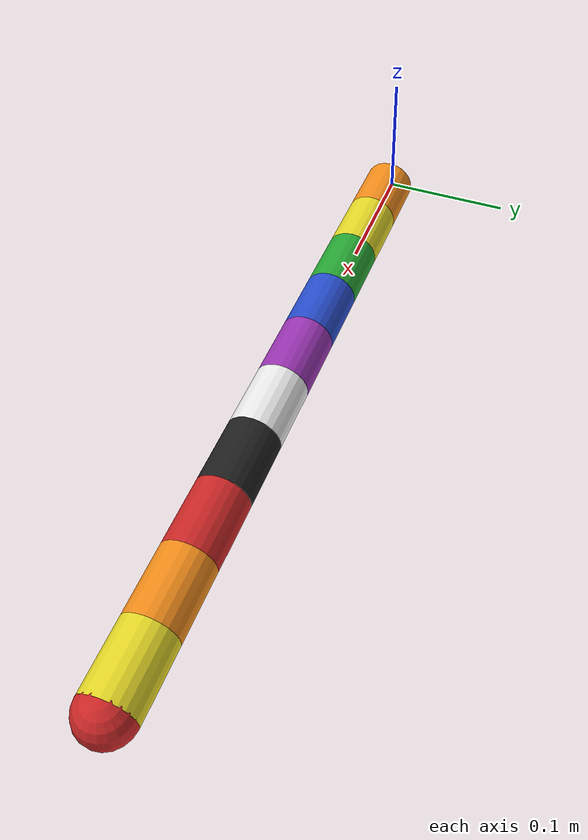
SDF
<sdf version="1.6">
    <model name="dragging_rope">
        <pose frame="">0 0 0.01 0 0 0</pose>

        <link name="rope_link_1">
            <pose frame="">0.05 0 0 3.14159 -1.57079 3.14159</pose>
            <inertial>
                <pose frame="">0.025 0 0 0 0 0</pose>
                <mass>0.05</mass>
                <inertia>
                    <ixx>1.5416666666666668e-05</ixx>
                    <ixy>0</ixy>
                    <ixz>0</ixz>
                    <iyy>1.5416666666666668e-05</iyy>
                    <iyz>0</iyz>
                    <izz>1.0e-05</izz>
                </inertia>
            </inertial>
            <collision name="rope_link_1_collision">
                <pose frame="">0 0 0.015000000000000001 0 0 0</pose>
                <geometry>
                    <box>
                        <size>0.04 0.04 0.037500000000000006</size>
                    </box>
                </geometry>
                <surface>
                    <friction>
                        <ode>
                            <mu>0.10</mu>
                            <mu2>0.10</mu2>
                        </ode>
                    </friction>
                    <contact>
                        <ode>
                            <kp>1e15</kp>
                            <kd>1e13</kd>
                        </ode>
                    </contact>
                </surface>
                <max_contacts>5</max_contacts>
            </collision>
            <visual name="rope_link_1_visual">
                <cast_shadows>0</cast_shadows>
                <pose frame="">0 0 0.015000000000000001 0 0 0</pose>
                <geometry>
                    <cylinder>
                        <length>0.05</length>
                        <radius>0.02</radius>
                    </cylinder>
                </geometry>
                <material>
                    <script>
                        <name>Gazebo/Orange</name>
                        <uri>file://media/materials/scripts/gazebo.material</uri>
                    </script>
                </material>
            </visual>
            <self_collide>1</self_collide>
        </link>

        <link name="rope_link_2">
            <pose frame="">0.1 0 0 3.14159 -1.57079 3.14159</pose>
            <inertial>
                <pose frame="">0.025 0 0 0 0 0</pose>
                <mass>0.05</mass>
                <inertia>
                    <ixx>1.5416666666666668e-05</ixx>
                    <ixy>0</ixy>
                    <ixz>0</ixz>
                    <iyy>1.5416666666666668e-05</iyy>
                    <iyz>0</iyz>
                    <izz>1.0e-05</izz>
                </inertia>
            </inertial>
            <collision name="rope_link_2_collision">
                <pose frame="">0 0 0.015000000000000001 0 0 0</pose>
                <geometry>
                    <box>
                        <size>0.04 0.04 0.037500000000000006</size>
                    </box>
                </geometry>
                <surface>
                    <friction>
                        <ode>
                            <mu>0.10</mu>
                            <mu2>0.10</mu2>
                        </ode>
                    </friction>
                    <contact>
                        <ode>
                            <kp>1e15</kp>
                            <kd>1e13</kd>
                        </ode>
                    </contact>
                </surface>
                <max_contacts>5</max_contacts>
            </collision>
            <visual name="rope_link_2_visual">
                <cast_shadows>0</cast_shadows>
                <pose frame="">0 0 0.015000000000000001 0 0 0</pose>
                <geometry>
                    <cylinder>
                        <length>0.05</length>
                        <radius>0.02</radius>
                    </cylinder>
                </geometry>
                <material>
                    <script>
                        <name>Gazebo/Yellow</name>
                        <uri>file://media/materials/scripts/gazebo.material</uri>
                    </script>
                </material>
            </visual>
            <self_collide>1</self_collide>
        </link>

        <link name="rope_link_3">
            <pose frame="">0.15000000000000002 0 0 3.14159 -1.57079 3.14159</pose>
            <inertial>
                <pose frame="">0.025 0 0 0 0 0</pose>
                <mass>0.05</mass>
                <inertia>
                    <ixx>1.5416666666666668e-05</ixx>
                    <ixy>0</ixy>
                    <ixz>0</ixz>
                    <iyy>1.5416666666666668e-05</iyy>
                    <iyz>0</iyz>
                    <izz>1.0e-05</izz>
                </inertia>
            </inertial>
            <collision name="rope_link_3_collision">
                <pose frame="">0 0 0.015000000000000001 0 0 0</pose>
                <geometry>
                    <box>
                        <size>0.04 0.04 0.037500000000000006</size>
                    </box>
                </geometry>
                <surface>
                    <friction>
                        <ode>
                            <mu>0.10</mu>
                            <mu2>0.10</mu2>
                        </ode>
                    </friction>
                    <contact>
                        <ode>
                            <kp>1e15</kp>
                            <kd>1e13</kd>
                        </ode>
                    </contact>
                </surface>
                <max_contacts>5</max_contacts>
            </collision>
            <visual name="rope_link_3_visual">
                <cast_shadows>0</cast_shadows>
                <pose frame="">0 0 0.015000000000000001 0 0 0</pose>
                <geometry>
                    <cylinder>
                        <length>0.05</length>
                        <radius>0.02</radius>
                    </cylinder>
                </geometry>
                <material>
                    <script>
                        <name>Gazebo/Green</name>
                        <uri>file://media/materials/scripts/gazebo.material</uri>
                    </script>
                </material>
            </visual>
            <self_collide>1</self_collide>
        </link>

        <link name="rope_link_4">
            <pose frame="">0.2 0 0 3.14159 -1.57079 3.14159</pose>
            <inertial>
                <pose frame="">0.025 0 0 0 0 0</pose>
                <mass>0.05</mass>
                <inertia>
                    <ixx>1.5416666666666668e-05</ixx>
                    <ixy>0</ixy>
                    <ixz>0</ixz>
                    <iyy>1.5416666666666668e-05</iyy>
                    <iyz>0</iyz>
                    <izz>1.0e-05</izz>
                </inertia>
            </inertial>
            <collision name="rope_link_4_collision">
                <pose frame="">0 0 0.015000000000000001 0 0 0</pose>
                <geometry>
                    <box>
                        <size>0.04 0.04 0.037500000000000006</size>
                    </box>
                </geometry>
                <surface>
                    <friction>
                        <ode>
                            <mu>0.10</mu>
                            <mu2>0.10</mu2>
                        </ode>
                    </friction>
                    <contact>
                        <ode>
                            <kp>1e15</kp>
                            <kd>1e13</kd>
                        </ode>
                    </contact>
                </surface>
                <max_contacts>5</max_contacts>
            </collision>
            <visual name="rope_link_4_visual">
                <cast_shadows>0</cast_shadows>
                <pose frame="">0 0 0.015000000000000001 0 0 0</pose>
                <geometry>
                    <cylinder>
                        <length>0.05</length>
                        <radius>0.02</radius>
                    </cylinder>
                </geometry>
                <material>
                    <script>
                        <name>Gazebo/Blue</name>
                        <uri>file://media/materials/scripts/gazebo.material</uri>
                    </script>
                </material>
            </visual>
            <self_collide>1</self_collide>
        </link>

        <link name="rope_link_5">
            <pose frame="">0.25 0 0 3.14159 -1.57079 3.14159</pose>
            <inertial>
                <pose frame="">0.025 0 0 0 0 0</pose>
                <mass>0.05</mass>
                <inertia>
                    <ixx>1.5416666666666668e-05</ixx>
                    <ixy>0</ixy>
                    <ixz>0</ixz>
                    <iyy>1.5416666666666668e-05</iyy>
                    <iyz>0</iyz>
                    <izz>1.0e-05</izz>
                </inertia>
            </inertial>
            <collision name="rope_link_5_collision">
                <pose frame="">0 0 0.015000000000000001 0 0 0</pose>
                <geometry>
                    <box>
                        <size>0.04 0.04 0.037500000000000006</size>
                    </box>
                </geometry>
                <surface>
                    <friction>
                        <ode>
                            <mu>0.10</mu>
                            <mu2>0.10</mu2>
                        </ode>
                    </friction>
                    <contact>
                        <ode>
                            <kp>1e15</kp>
                            <kd>1e13</kd>
                        </ode>
                    </contact>
                </surface>
                <max_contacts>5</max_contacts>
            </collision>
            <visual name="rope_link_5_visual">
                <cast_shadows>0</cast_shadows>
                <pose frame="">0 0 0.015000000000000001 0 0 0</pose>
                <geometry>
                    <cylinder>
                        <length>0.05</length>
                        <radius>0.02</radius>
                    </cylinder>
                </geometry>
                <material>
                    <script>
                        <name>Gazebo/Purple</name>
                        <uri>file://media/materials/scripts/gazebo.material</uri>
                    </script>
                </material>
            </visual>
            <self_collide>1</self_collide>
        </link>

        <link name="rope_link_6">
            <pose frame="">0.30000000000000004 0 0 3.14159 -1.57079 3.14159</pose>
            <inertial>
                <pose frame="">0.025 0 0 0 0 0</pose>
                <mass>0.05</mass>
                <inertia>
                    <ixx>1.5416666666666668e-05</ixx>
                    <ixy>0</ixy>
                    <ixz>0</ixz>
                    <iyy>1.5416666666666668e-05</iyy>
                    <iyz>0</iyz>
                    <izz>1.0e-05</izz>
                </inertia>
            </inertial>
            <collision name="rope_link_6_collision">
                <pose frame="">0 0 0.015000000000000001 0 0 0</pose>
                <geometry>
                    <box>
                        <size>0.04 0.04 0.037500000000000006</size>
                    </box>
                </geometry>
                <surface>
                    <friction>
                        <ode>
                            <mu>0.10</mu>
                            <mu2>0.10</mu2>
                        </ode>
                    </friction>
                    <contact>
                        <ode>
                            <kp>1e15</kp>
                            <kd>1e13</kd>
                        </ode>
                    </contact>
                </surface>
                <max_contacts>5</max_contacts>
            </collision>
            <visual name="rope_link_6_visual">
                <cast_shadows>0</cast_shadows>
                <pose frame="">0 0 0.015000000000000001 0 0 0</pose>
                <geometry>
                    <cylinder>
                        <length>0.05</length>
                        <radius>0.02</radius>
                    </cylinder>
                </geometry>
                <material>
                    <script>
                        <name>Gazebo/White</name>
                        <uri>file://media/materials/scripts/gazebo.material</uri>
                    </script>
                </material>
            </visual>
            <self_collide>1</self_collide>
        </link>

        <link name="rope_link_7">
            <pose frame="">0.35000000000000003 0 0 3.14159 -1.57079 3.14159</pose>
            <inertial>
                <pose frame="">0.025 0 0 0 0 0</pose>
                <mass>0.05</mass>
                <inertia>
                    <ixx>1.5416666666666668e-05</ixx>
                    <ixy>0</ixy>
                    <ixz>0</ixz>
                    <iyy>1.5416666666666668e-05</iyy>
                    <iyz>0</iyz>
                    <izz>1.0e-05</izz>
                </inertia>
            </inertial>
            <collision name="rope_link_7_collision">
                <pose frame="">0 0 0.015000000000000001 0 0 0</pose>
                <geometry>
                    <box>
                        <size>0.04 0.04 0.037500000000000006</size>
                    </box>
                </geometry>
                <surface>
                    <friction>
                        <ode>
                            <mu>0.10</mu>
                            <mu2>0.10</mu2>
                        </ode>
                    </friction>
                    <contact>
                        <ode>
                            <kp>1e15</kp>
                            <kd>1e13</kd>
                        </ode>
                    </contact>
                </surface>
                <max_contacts>5</max_contacts>
            </collision>
            <visual name="rope_link_7_visual">
                <cast_shadows>0</cast_shadows>
                <pose frame="">0 0 0.015000000000000001 0 0 0</pose>
                <geometry>
                    <cylinder>
                        <length>0.05</length>
                        <radius>0.02</radius>
                    </cylinder>
                </geometry>
                <material>
                    <script>
                        <name>Gazebo/Black</name>
                        <uri>file://media/materials/scripts/gazebo.material</uri>
                    </script>
                </material>
            </visual>
            <self_collide>1</self_collide>
        </link>

        <link name="rope_link_8">
            <pose frame="">0.4 0 0 3.14159 -1.57079 3.14159</pose>
            <inertial>
                <pose frame="">0.025 0 0 0 0 0</pose>
                <mass>0.05</mass>
                <inertia>
                    <ixx>1.5416666666666668e-05</ixx>
                    <ixy>0</ixy>
                    <ixz>0</ixz>
                    <iyy>1.5416666666666668e-05</iyy>
                    <iyz>0</iyz>
                    <izz>1.0e-05</izz>
                </inertia>
            </inertial>
            <collision name="rope_link_8_collision">
                <pose frame="">0 0 0.015000000000000001 0 0 0</pose>
                <geometry>
                    <box>
                        <size>0.04 0.04 0.037500000000000006</size>
                    </box>
                </geometry>
                <surface>
                    <friction>
                        <ode>
                            <mu>0.10</mu>
                            <mu2>0.10</mu2>
                        </ode>
                    </friction>
                    <contact>
                        <ode>
                            <kp>1e15</kp>
                            <kd>1e13</kd>
                        </ode>
                    </contact>
                </surface>
                <max_contacts>5</max_contacts>
            </collision>
            <visual name="rope_link_8_visual">
                <cast_shadows>0</cast_shadows>
                <pose frame="">0 0 0.015000000000000001 0 0 0</pose>
                <geometry>
                    <cylinder>
                        <length>0.05</length>
                        <radius>0.02</radius>
                    </cylinder>
                </geometry>
                <material>
                    <script>
                        <name>Gazebo/Red</name>
                        <uri>file://media/materials/scripts/gazebo.material</uri>
                    </script>
                </material>
            </visual>
            <self_collide>1</self_collide>
        </link>

        <link name="rope_link_9">
            <pose frame="">0.45 0 0 3.14159 -1.57079 3.14159</pose>
            <inertial>
                <pose frame="">0.025 0 0 0 0 0</pose>
                <mass>0.05</mass>
                <inertia>
                    <ixx>1.5416666666666668e-05</ixx>
                    <ixy>0</ixy>
                    <ixz>0</ixz>
                    <iyy>1.5416666666666668e-05</iyy>
                    <iyz>0</iyz>
                    <izz>1.0e-05</izz>
                </inertia>
            </inertial>
            <collision name="rope_link_9_collision">
                <pose frame="">0 0 0.015000000000000001 0 0 0</pose>
                <geometry>
                    <box>
                        <size>0.04 0.04 0.037500000000000006</size>
                    </box>
                </geometry>
                <surface>
                    <friction>
                        <ode>
                            <mu>0.10</mu>
                            <mu2>0.10</mu2>
                        </ode>
                    </friction>
                    <contact>
                        <ode>
                            <kp>1e15</kp>
                            <kd>1e13</kd>
                        </ode>
                    </contact>
                </surface>
                <max_contacts>5</max_contacts>
            </collision>
            <visual name="rope_link_9_visual">
                <cast_shadows>0</cast_shadows>
                <pose frame="">0 0 0.015000000000000001 0 0 0</pose>
                <geometry>
                    <cylinder>
                        <length>0.05</length>
                        <radius>0.02</radius>
                    </cylinder>
                </geometry>
                <material>
                    <script>
                        <name>Gazebo/Orange</name>
                        <uri>file://media/materials/scripts/gazebo.material</uri>
                    </script>
                </material>
            </visual>
            <self_collide>1</self_collide>
        </link>

        <link name="rope_link_10">
            <pose frame="">0.5 0 0 3.14159 -1.57079 3.14159</pose>
            <inertial>
                <pose frame="">0.025 0 0 0 0 0</pose>
                <mass>0.05</mass>
                <inertia>
                    <ixx>1.5416666666666668e-05</ixx>
                    <ixy>0</ixy>
                    <ixz>0</ixz>
                    <iyy>1.5416666666666668e-05</iyy>
                    <iyz>0</iyz>
                    <izz>1.0e-05</izz>
                </inertia>
            </inertial>
            <collision name="rope_link_10_collision">
                <pose frame="">0 0 0.015000000000000001 0 0 0</pose>
                <geometry>
                    <box>
                        <size>0.04 0.04 0.037500000000000006</size>
                    </box>
                </geometry>
                <surface>
                    <friction>
                        <ode>
                            <mu>0.10</mu>
                            <mu2>0.10</mu2>
                        </ode>
                    </friction>
                    <contact>
                        <ode>
                            <kp>1e15</kp>
                            <kd>1e13</kd>
                        </ode>
                    </contact>
                </surface>
                <max_contacts>5</max_contacts>
            </collision>
            <visual name="rope_link_10_visual">
                <cast_shadows>0</cast_shadows>
                <pose frame="">0 0 0.015000000000000001 0 0 0</pose>
                <geometry>
                    <cylinder>
                        <length>0.05</length>
                        <radius>0.02</radius>
                    </cylinder>
                </geometry>
                <material>
                    <script>
                        <name>Gazebo/Yellow</name>
                        <uri>file://media/materials/scripts/gazebo.material</uri>
                    </script>
                </material>
            </visual>
            <self_collide>1</self_collide>
        </link>

        <joint name="joint_1" type="revolute">
            <child>rope_link_2</child>
            <parent>rope_link_1</parent>
            <pose>0 0 0.04 0 0 0</pose>
            <axis>
                <xyz>0 0 1</xyz>
                <limit>
                    <lower>-2.8</lower>
                    <upper>2.8</upper>
                    <effort>10</effort>
                    <velocity>5</velocity>
                </limit>
                <dynamics>
                    <damping>0</damping>
                    <friction>0</friction>
                </dynamics>
                <use_parent_model_frame>1</use_parent_model_frame>
            </axis>
            <physics>
                <ode>
                    <cfm>0.0001</cfm>
                    <implicit_spring_damper>1</implicit_spring_damper>
                </ode>
            </physics>
        </joint>

        <joint name="joint_2" type="revolute">
            <child>rope_link_3</child>
            <parent>rope_link_2</parent>
            <pose>0 0 0.04 0 0 0</pose>
            <axis>
                <xyz>0 0 1</xyz>
                <limit>
                    <lower>-2.8</lower>
                    <upper>2.8</upper>
                    <effort>10</effort>
                    <velocity>5</velocity>
                </limit>
                <dynamics>
                    <damping>0</damping>
                    <friction>0</friction>
                </dynamics>
                <use_parent_model_frame>1</use_parent_model_frame>
            </axis>
            <physics>
                <ode>
                    <cfm>0.0001</cfm>
                    <implicit_spring_damper>1</implicit_spring_damper>
                </ode>
            </physics>
        </joint>

        <joint name="joint_3" type="revolute">
            <child>rope_link_4</child>
            <parent>rope_link_3</parent>
            <pose>0 0 0.04 0 0 0</pose>
            <axis>
                <xyz>0 0 1</xyz>
                <limit>
                    <lower>-2.8</lower>
                    <upper>2.8</upper>
                    <effort>10</effort>
                    <velocity>5</velocity>
                </limit>
                <dynamics>
                    <damping>0</damping>
                    <friction>0</friction>
                </dynamics>
                <use_parent_model_frame>1</use_parent_model_frame>
            </axis>
            <physics>
                <ode>
                    <cfm>0.0001</cfm>
                    <implicit_spring_damper>1</implicit_spring_damper>
                </ode>
            </physics>
        </joint>

        <joint name="joint_4" type="revolute">
            <child>rope_link_5</child>
            <parent>rope_link_4</parent>
            <pose>0 0 0.04 0 0 0</pose>
            <axis>
                <xyz>0 0 1</xyz>
                <limit>
                    <lower>-2.8</lower>
                    <upper>2.8</upper>
                    <effort>10</effort>
                    <velocity>5</velocity>
                </limit>
                <dynamics>
                    <damping>0</damping>
                    <friction>0</friction>
                </dynamics>
                <use_parent_model_frame>1</use_parent_model_frame>
            </axis>
            <physics>
                <ode>
                    <cfm>0.0001</cfm>
                    <implicit_spring_damper>1</implicit_spring_damper>
                </ode>
            </physics>
        </joint>

        <joint name="joint_5" type="revolute">
            <child>rope_link_6</child>
            <parent>rope_link_5</parent>
            <pose>0 0 0.04 0 0 0</pose>
            <axis>
                <xyz>0 0 1</xyz>
                <limit>
                    <lower>-2.8</lower>
                    <upper>2.8</upper>
                    <effort>10</effort>
                    <velocity>5</velocity>
                </limit>
                <dynamics>
                    <damping>0</damping>
                    <friction>0</friction>
                </dynamics>
                <use_parent_model_frame>1</use_parent_model_frame>
            </axis>
            <physics>
                <ode>
                    <cfm>0.0001</cfm>
                    <implicit_spring_damper>1</implicit_spring_damper>
                </ode>
            </physics>
        </joint>

        <joint name="joint_6" type="revolute">
            <child>rope_link_7</child>
            <parent>rope_link_6</parent>
            <pose>0 0 0.04 0 0 0</pose>
            <axis>
                <xyz>0 0 1</xyz>
                <limit>
                    <lower>-2.8</lower>
                    <upper>2.8</upper>
                    <effort>10</effort>
                    <velocity>5</velocity>
                </limit>
                <dynamics>
                    <damping>0</damping>
                    <friction>0</friction>
                </dynamics>
                <use_parent_model_frame>1</use_parent_model_frame>
            </axis>
            <physics>
                <ode>
                    <cfm>0.0001</cfm>
                    <implicit_spring_damper>1</implicit_spring_damper>
                </ode>
            </physics>
        </joint>

        <joint name="joint_7" type="revolute">
            <child>rope_link_8</child>
            <parent>rope_link_7</parent>
            <pose>0 0 0.04 0 0 0</pose>
            <axis>
                <xyz>0 0 1</xyz>
                <limit>
                    <lower>-2.8</lower>
                    <upper>2.8</upper>
                    <effort>10</effort>
                    <velocity>5</velocity>
                </limit>
                <dynamics>
                    <damping>0</damping>
                    <friction>0</friction>
                </dynamics>
                <use_parent_model_frame>1</use_parent_model_frame>
            </axis>
            <physics>
                <ode>
                    <cfm>0.0001</cfm>
                    <implicit_spring_damper>1</implicit_spring_damper>
                </ode>
            </physics>
        </joint>

        <joint name="joint_8" type="revolute">
            <child>rope_link_9</child>
            <parent>rope_link_8</parent>
            <pose>0 0 0.04 0 0 0</pose>
            <axis>
                <xyz>0 0 1</xyz>
                <limit>
                    <lower>-2.8</lower>
                    <upper>2.8</upper>
                    <effort>10</effort>
                    <velocity>5</velocity>
                </limit>
                <dynamics>
                    <damping>0</damping>
                    <friction>0</friction>
                </dynamics>
                <use_parent_model_frame>1</use_parent_model_frame>
            </axis>
            <physics>
                <ode>
                    <cfm>0.0001</cfm>
                    <implicit_spring_damper>1</implicit_spring_damper>
                </ode>
            </physics>
        </joint>

        <joint name="joint_9" type="revolute">
            <child>rope_link_10</child>
            <parent>rope_link_9</parent>
            <pose>0 0 0.04 0 0 0</pose>
            <axis>
                <xyz>0 0 1</xyz>
                <limit>
                    <lower>-2.8</lower>
                    <upper>2.8</upper>
                    <effort>10</effort>
                    <velocity>5</velocity>
                </limit>
                <dynamics>
                    <damping>0</damping>
                    <friction>0</friction>
                </dynamics>
                <use_parent_model_frame>1</use_parent_model_frame>
            </axis>
            <physics>
                <ode>
                    <cfm>0.0001</cfm>
                    <implicit_spring_damper>1</implicit_spring_damper>
                </ode>
            </physics>
        </joint>

        <link name='gripper1'>
            <pose frame=''>0.51 0 0 0 0 0</pose>
            <inertial>
                <pose frame=''>0 0 0 0 0 0</pose>
                <mass>0.1</mass>
                <inertia>
                    <ixx>0.0001</ixx>
                    <ixy>0</ixy>
                    <ixz>0</ixz>
                    <iyy>0.0001</iyy>
                    <iyz>0</iyz>
                    <izz>0.001</izz>
                </inertia>
            </inertial>
            <collision name='head_collision'>
                <pose frame=''>0 0 0 0 0 0</pose>
                <geometry>
                    <sphere>
                        <radius>0.02</radius>
                    </sphere>
                </geometry>
                <surface>
                    <friction>
                        <ode>
                            <mu>0.10</mu>
                            <mu2>0.10</mu2>
                        </ode>
                    </friction>
                </surface>
                <max_contacts>20</max_contacts>
            </collision>
            <visual name='head_visual'>
                <cast_shadows>0</cast_shadows>
                <pose frame=''>0 0 0 0 0 0</pose>
                <geometry>
                    <sphere>
                        <radius>0.02</radius>
                    </sphere>
                </geometry>
                <material>
                    <script>
                        <name>Gazebo/Red</name>
                        <uri>file://media/materials/scripts/gazebo.material</uri>
                    </script>
                </material>
            </visual>
            <self_collide>1</self_collide>
            <sensor name='head_contact' type='contact'>
                <contact>
                    <collision>head_collision</collision>
                    <topic>__default_topic__</topic>
                </contact>
            </sensor>
        </link>
        <joint name="head_joint" type="revolute">
            <child>gripper1</child>
            <parent>rope_link_10</parent>
            <pose>0 0 0 0 0 0</pose>
            <axis>
                <xyz>0 0 1</xyz>
                <dynamics>
                    <damping>0</damping>
                    <friction>0</friction>
                </dynamics>
            </axis>
            <physics>
                <ode>
                    <cfm>0.0005</cfm>
                    <implicit_spring_damper>1</implicit_spring_damper>
                </ode>
            </physics>
        </joint>
        <plugin name='rope_plugin' filename='librope_plugin.so'>
            <num_links>10</num_links>
        </plugin>
    </model>
</sdf>
